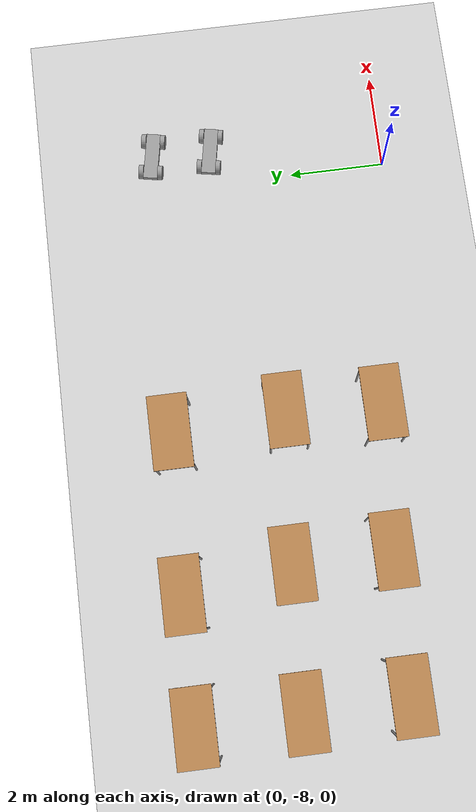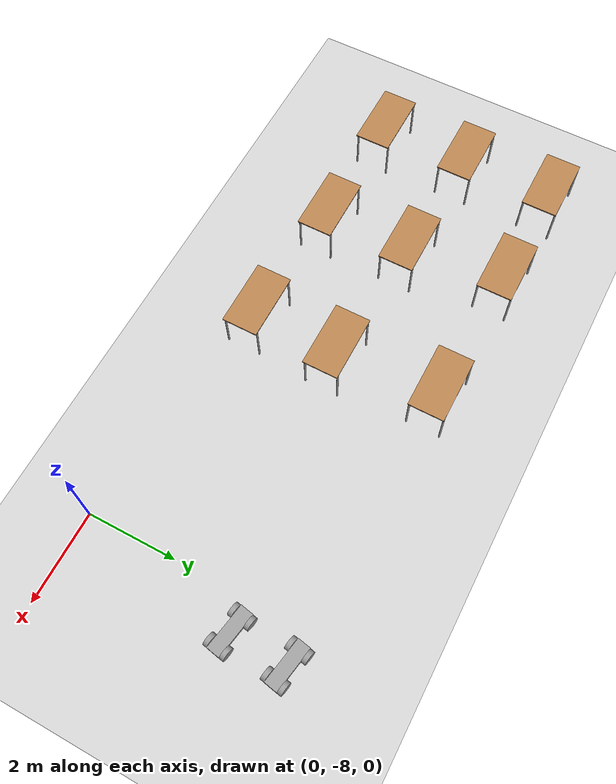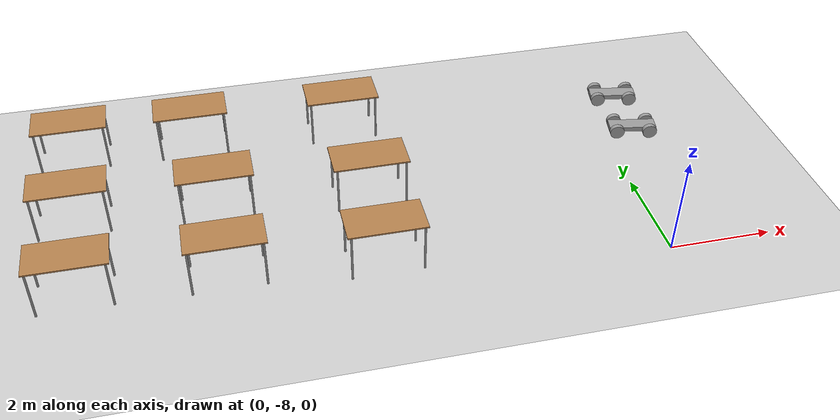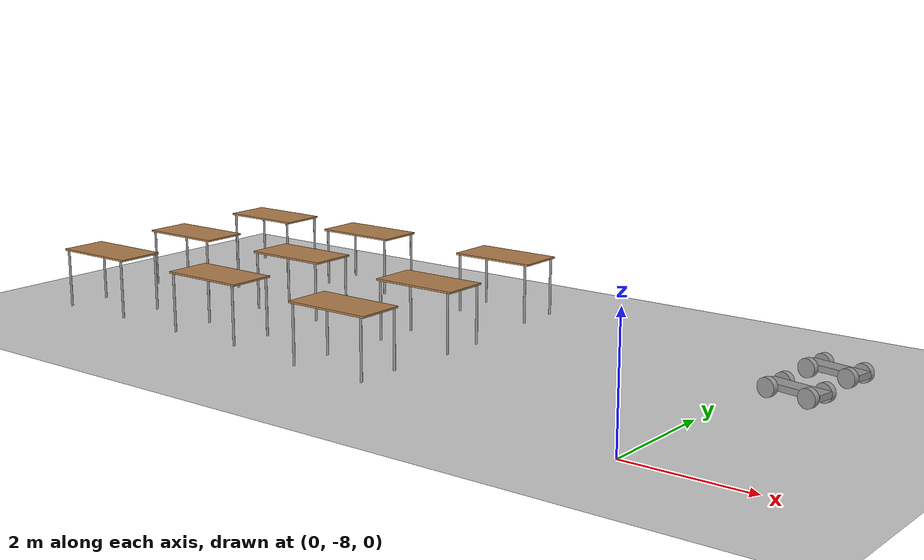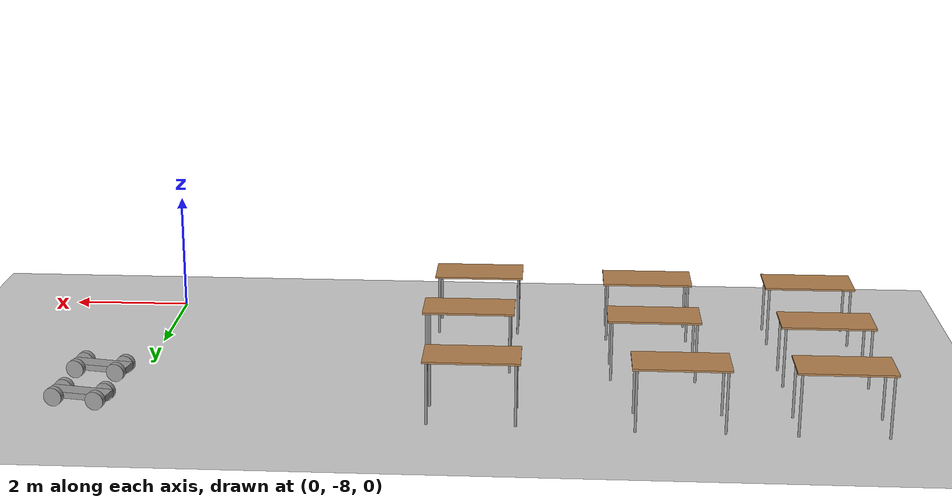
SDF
<sdf version="1.6">
 <world name="default">
  <model name="ground_plane">
   <static>1</static>
   <link name="link">
    <collision name="collision">
     <geometry><plane><normal>0 0 1</normal><size>100 100</size></plane></geometry>
     <surface>
      <contact><collide_bitmask>65535</collide_bitmask></contact>
      <friction><ode><mu>100</mu><mu2>50</mu2></ode></friction>
     </surface>
    </collision>
    <visual name="visual">
     <cast_shadows>0</cast_shadows>
     <geometry><plane><normal>0 0 1</normal><size>100 100</size></plane></geometry>
     <material>
      <script><uri>file://media/materials/scripts/gazebo.material</uri><name>Gazebo/Grey</name></script>
     </material>
    </visual>
   </link>
  </model>
  <model name="table_0">
   <static>1</static>
   <link name="link">
    <collision name="surface">
     <pose>0 0 1 0 -0 0</pose>
     <geometry><box><size>1.5 0.8 0.03</size></box></geometry>
     <surface><friction><ode><mu>0.6</mu><mu2>0.6</mu2></ode></friction></surface>
    </collision>
    <visual name="visual1">
     <pose>0 0 1 0 -0 0</pose>
     <geometry><box><size>1.5 0.8 0.03</size></box></geometry>
     <material>
      <script><uri>file://media/materials/scripts/gazebo.material</uri><name>Gazebo/Wood</name></script>
     </material>
    </visual>
    <collision name="front_left_leg">
     <pose>0.68 0.38 0.5 0 -0 0</pose>
     <geometry><cylinder><radius>0.02</radius><length>1</length></cylinder></geometry>
    </collision>
    <visual name="front_left_leg">
     <pose>0.68 0.38 0.5 0 -0 0</pose>
     <geometry><cylinder><radius>0.02</radius><length>1</length></cylinder></geometry>
     <material>
      <script><uri>file://media/materials/scripts/gazebo.material</uri><name>Gazebo/Grey</name></script>
     </material>
    </visual>
    <collision name="front_right_leg">
     <pose>0.68 -0.38 0.5 0 -0 0</pose>
     <geometry><cylinder><radius>0.02</radius><length>1</length></cylinder></geometry>
    </collision>
    <visual name="front_right_leg">
     <pose>0.68 -0.38 0.5 0 -0 0</pose>
     <geometry><cylinder><radius>0.02</radius><length>1</length></cylinder></geometry>
     <material>
      <script><uri>file://media/materials/scripts/gazebo.material</uri><name>Gazebo/Grey</name></script>
     </material>
    </visual>
    <collision name="back_right_leg">
     <pose>-0.68 -0.38 0.5 0 -0 0</pose>
     <geometry><cylinder><radius>0.02</radius><length>1</length></cylinder></geometry>
    </collision>
    <visual name="back_right_leg">
     <pose>-0.68 -0.38 0.5 0 -0 0</pose>
     <geometry><cylinder><radius>0.02</radius><length>1</length></cylinder></geometry>
     <material>
      <script><uri>file://media/materials/scripts/gazebo.material</uri><name>Gazebo/Grey</name></script>
     </material>
    </visual>
    <collision name="back_left_leg">
     <pose>-0.68 0.38 0.5 0 -0 0</pose>
     <geometry><cylinder><radius>0.02</radius><length>1</length></cylinder></geometry>
    </collision>
    <visual name="back_left_leg">
     <pose>-0.68 0.38 0.5 0 -0 0</pose>
     <geometry><cylinder><radius>0.02</radius><length>1</length></cylinder></geometry>
     <material>
      <script><uri>file://media/materials/scripts/gazebo.material</uri><name>Gazebo/Grey</name></script>
     </material>
    </visual>
   </link>
   <pose>-11.0443 -2.76264 0 0 -0 0</pose>
  </model>
  <model name="table_1">
   <static>1</static>
   <link name="link">
    <collision name="surface">
     <pose>0 0 1 0 -0 0</pose>
     <geometry><box><size>1.5 0.8 0.03</size></box></geometry>
     <surface><friction><ode><mu>0.6</mu><mu2>0.6</mu2></ode></friction></surface>
    </collision>
    <visual name="visual1">
     <pose>0 0 1 0 -0 0</pose>
     <geometry><box><size>1.5 0.8 0.03</size></box></geometry>
     <material>
      <script><uri>file://media/materials/scripts/gazebo.material</uri><name>Gazebo/Wood</name></script>
     </material>
    </visual>
    <collision name="front_left_leg">
     <pose>0.68 0.38 0.5 0 -0 0</pose>
     <geometry><cylinder><radius>0.02</radius><length>1</length></cylinder></geometry>
    </collision>
    <visual name="front_left_leg">
     <pose>0.68 0.38 0.5 0 -0 0</pose>
     <geometry><cylinder><radius>0.02</radius><length>1</length></cylinder></geometry>
     <material>
      <script><uri>file://media/materials/scripts/gazebo.material</uri><name>Gazebo/Grey</name></script>
     </material>
    </visual>
    <collision name="front_right_leg">
     <pose>0.68 -0.38 0.5 0 -0 0</pose>
     <geometry><cylinder><radius>0.02</radius><length>1</length></cylinder></geometry>
    </collision>
    <visual name="front_right_leg">
     <pose>0.68 -0.38 0.5 0 -0 0</pose>
     <geometry><cylinder><radius>0.02</radius><length>1</length></cylinder></geometry>
     <material>
      <script><uri>file://media/materials/scripts/gazebo.material</uri><name>Gazebo/Grey</name></script>
     </material>
    </visual>
    <collision name="back_right_leg">
     <pose>-0.68 -0.38 0.5 0 -0 0</pose>
     <geometry><cylinder><radius>0.02</radius><length>1</length></cylinder></geometry>
    </collision>
    <visual name="back_right_leg">
     <pose>-0.68 -0.38 0.5 0 -0 0</pose>
     <geometry><cylinder><radius>0.02</radius><length>1</length></cylinder></geometry>
     <material>
      <script><uri>file://media/materials/scripts/gazebo.material</uri><name>Gazebo/Grey</name></script>
     </material>
    </visual>
    <collision name="back_left_leg">
     <pose>-0.68 0.38 0.5 0 -0 0</pose>
     <geometry><cylinder><radius>0.02</radius><length>1</length></cylinder></geometry>
    </collision>
    <visual name="back_left_leg">
     <pose>-0.68 0.38 0.5 0 -0 0</pose>
     <geometry><cylinder><radius>0.02</radius><length>1</length></cylinder></geometry>
     <material>
      <script><uri>file://media/materials/scripts/gazebo.material</uri><name>Gazebo/Grey</name></script>
     </material>
    </visual>
   </link>
   <pose>-11.0405 -4.83627 0 0 -0 0</pose>
  </model>
  <model name="table_2">
   <static>1</static>
   <link name="link">
    <collision name="surface">
     <pose>0 0 1 0 -0 0</pose>
     <geometry><box><size>1.5 0.8 0.03</size></box></geometry>
     <surface><friction><ode><mu>0.6</mu><mu2>0.6</mu2></ode></friction></surface>
    </collision>
    <visual name="visual1">
     <pose>0 0 1 0 -0 0</pose>
     <geometry><box><size>1.5 0.8 0.03</size></box></geometry>
     <material>
      <script><uri>file://media/materials/scripts/gazebo.material</uri><name>Gazebo/Wood</name></script>
     </material>
    </visual>
    <collision name="front_left_leg">
     <pose>0.68 0.38 0.5 0 -0 0</pose>
     <geometry><cylinder><radius>0.02</radius><length>1</length></cylinder></geometry>
    </collision>
    <visual name="front_left_leg">
     <pose>0.68 0.38 0.5 0 -0 0</pose>
     <geometry><cylinder><radius>0.02</radius><length>1</length></cylinder></geometry>
     <material>
      <script><uri>file://media/materials/scripts/gazebo.material</uri><name>Gazebo/Grey</name></script>
     </material>
    </visual>
    <collision name="front_right_leg">
     <pose>0.68 -0.38 0.5 0 -0 0</pose>
     <geometry><cylinder><radius>0.02</radius><length>1</length></cylinder></geometry>
    </collision>
    <visual name="front_right_leg">
     <pose>0.68 -0.38 0.5 0 -0 0</pose>
     <geometry><cylinder><radius>0.02</radius><length>1</length></cylinder></geometry>
     <material>
      <script><uri>file://media/materials/scripts/gazebo.material</uri><name>Gazebo/Grey</name></script>
     </material>
    </visual>
    <collision name="back_right_leg">
     <pose>-0.68 -0.38 0.5 0 -0 0</pose>
     <geometry><cylinder><radius>0.02</radius><length>1</length></cylinder></geometry>
    </collision>
    <visual name="back_right_leg">
     <pose>-0.68 -0.38 0.5 0 -0 0</pose>
     <geometry><cylinder><radius>0.02</radius><length>1</length></cylinder></geometry>
     <material>
      <script><uri>file://media/materials/scripts/gazebo.material</uri><name>Gazebo/Grey</name></script>
     </material>
    </visual>
    <collision name="back_left_leg">
     <pose>-0.68 0.38 0.5 0 -0 0</pose>
     <geometry><cylinder><radius>0.02</radius><length>1</length></cylinder></geometry>
    </collision>
    <visual name="back_left_leg">
     <pose>-0.68 0.38 0.5 0 -0 0</pose>
     <geometry><cylinder><radius>0.02</radius><length>1</length></cylinder></geometry>
     <material>
      <script><uri>file://media/materials/scripts/gazebo.material</uri><name>Gazebo/Grey</name></script>
     </material>
    </visual>
   </link>
   <pose>-10.9936 -6.86304 0 0 -0 0</pose>
  </model>
  <model name="table_4">
   <static>1</static>
   <link name="link">
    <collision name="surface">
     <pose>0 0 1 0 -0 0</pose>
     <geometry><box><size>1.5 0.8 0.03</size></box></geometry>
     <surface><friction><ode><mu>0.6</mu><mu2>0.6</mu2></ode></friction></surface>
    </collision>
    <visual name="visual1">
     <pose>0 0 1 0 -0 0</pose>
     <geometry><box><size>1.5 0.8 0.03</size></box></geometry>
     <material>
      <script><uri>file://media/materials/scripts/gazebo.material</uri><name>Gazebo/Wood</name></script>
     </material>
    </visual>
    <collision name="front_left_leg">
     <pose>0.68 0.38 0.5 0 -0 0</pose>
     <geometry><cylinder><radius>0.02</radius><length>1</length></cylinder></geometry>
    </collision>
    <visual name="front_left_leg">
     <pose>0.68 0.38 0.5 0 -0 0</pose>
     <geometry><cylinder><radius>0.02</radius><length>1</length></cylinder></geometry>
     <material>
      <script><uri>file://media/materials/scripts/gazebo.material</uri><name>Gazebo/Grey</name></script>
     </material>
    </visual>
    <collision name="front_right_leg">
     <pose>0.68 -0.38 0.5 0 -0 0</pose>
     <geometry><cylinder><radius>0.02</radius><length>1</length></cylinder></geometry>
    </collision>
    <visual name="front_right_leg">
     <pose>0.68 -0.38 0.5 0 -0 0</pose>
     <geometry><cylinder><radius>0.02</radius><length>1</length></cylinder></geometry>
     <material>
      <script><uri>file://media/materials/scripts/gazebo.material</uri><name>Gazebo/Grey</name></script>
     </material>
    </visual>
    <collision name="back_right_leg">
     <pose>-0.68 -0.38 0.5 0 -0 0</pose>
     <geometry><cylinder><radius>0.02</radius><length>1</length></cylinder></geometry>
    </collision>
    <visual name="back_right_leg">
     <pose>-0.68 -0.38 0.5 0 -0 0</pose>
     <geometry><cylinder><radius>0.02</radius><length>1</length></cylinder></geometry>
     <material>
      <script><uri>file://media/materials/scripts/gazebo.material</uri><name>Gazebo/Grey</name></script>
     </material>
    </visual>
    <collision name="back_left_leg">
     <pose>-0.68 0.38 0.5 0 -0 0</pose>
     <geometry><cylinder><radius>0.02</radius><length>1</length></cylinder></geometry>
    </collision>
    <visual name="back_left_leg">
     <pose>-0.68 0.38 0.5 0 -0 0</pose>
     <geometry><cylinder><radius>0.02</radius><length>1</length></cylinder></geometry>
     <material>
      <script><uri>file://media/materials/scripts/gazebo.material</uri><name>Gazebo/Grey</name></script>
     </material>
    </visual>
   </link>
   <pose>-8.60311 -2.79438 0 0 -0 0</pose>
  </model>
  <model name="table_5">
   <static>1</static>
   <link name="link">
    <collision name="surface">
     <pose>0 0 1 0 -0 0</pose>
     <geometry><box><size>1.5 0.8 0.03</size></box></geometry>
     <surface><friction><ode><mu>0.6</mu><mu2>0.6</mu2></ode></friction></surface>
    </collision>
    <visual name="visual1">
     <pose>0 0 1 0 -0 0</pose>
     <geometry><box><size>1.5 0.8 0.03</size></box></geometry>
     <material>
      <script><uri>file://media/materials/scripts/gazebo.material</uri><name>Gazebo/Wood</name></script>
     </material>
    </visual>
    <collision name="front_left_leg">
     <pose>0.68 0.38 0.5 0 -0 0</pose>
     <geometry><cylinder><radius>0.02</radius><length>1</length></cylinder></geometry>
    </collision>
    <visual name="front_left_leg">
     <pose>0.68 0.38 0.5 0 -0 0</pose>
     <geometry><cylinder><radius>0.02</radius><length>1</length></cylinder></geometry>
     <material>
      <script><uri>file://media/materials/scripts/gazebo.material</uri><name>Gazebo/Grey</name></script>
     </material>
    </visual>
    <collision name="front_right_leg">
     <pose>0.68 -0.38 0.5 0 -0 0</pose>
     <geometry><cylinder><radius>0.02</radius><length>1</length></cylinder></geometry>
    </collision>
    <visual name="front_right_leg">
     <pose>0.68 -0.38 0.5 0 -0 0</pose>
     <geometry><cylinder><radius>0.02</radius><length>1</length></cylinder></geometry>
     <material>
      <script><uri>file://media/materials/scripts/gazebo.material</uri><name>Gazebo/Grey</name></script>
     </material>
    </visual>
    <collision name="back_right_leg">
     <pose>-0.68 -0.38 0.5 0 -0 0</pose>
     <geometry><cylinder><radius>0.02</radius><length>1</length></cylinder></geometry>
    </collision>
    <visual name="back_right_leg">
     <pose>-0.68 -0.38 0.5 0 -0 0</pose>
     <geometry><cylinder><radius>0.02</radius><length>1</length></cylinder></geometry>
     <material>
      <script><uri>file://media/materials/scripts/gazebo.material</uri><name>Gazebo/Grey</name></script>
     </material>
    </visual>
    <collision name="back_left_leg">
     <pose>-0.68 0.38 0.5 0 -0 0</pose>
     <geometry><cylinder><radius>0.02</radius><length>1</length></cylinder></geometry>
    </collision>
    <visual name="back_left_leg">
     <pose>-0.68 0.38 0.5 0 -0 0</pose>
     <geometry><cylinder><radius>0.02</radius><length>1</length></cylinder></geometry>
     <material>
      <script><uri>file://media/materials/scripts/gazebo.material</uri><name>Gazebo/Grey</name></script>
     </material>
    </visual>
   </link>
   <pose>-8.28829 -4.96082 0 0 -0 0</pose>
  </model>
  <model name="table_6">
   <static>1</static>
   <link name="link">
    <collision name="surface">
     <pose>0 0 1 0 -0 0</pose>
     <geometry><box><size>1.5 0.8 0.03</size></box></geometry>
     <surface><friction><ode><mu>0.6</mu><mu2>0.6</mu2></ode></friction></surface>
    </collision>
    <visual name="visual1">
     <pose>0 0 1 0 -0 0</pose>
     <geometry><box><size>1.5 0.8 0.03</size></box></geometry>
     <material>
      <script><uri>file://media/materials/scripts/gazebo.material</uri><name>Gazebo/Wood</name></script>
     </material>
    </visual>
    <collision name="front_left_leg">
     <pose>0.68 0.38 0.5 0 -0 0</pose>
     <geometry><cylinder><radius>0.02</radius><length>1</length></cylinder></geometry>
    </collision>
    <visual name="front_left_leg">
     <pose>0.68 0.38 0.5 0 -0 0</pose>
     <geometry><cylinder><radius>0.02</radius><length>1</length></cylinder></geometry>
     <material>
      <script><uri>file://media/materials/scripts/gazebo.material</uri><name>Gazebo/Grey</name></script>
     </material>
    </visual>
    <collision name="front_right_leg">
     <pose>0.68 -0.38 0.5 0 -0 0</pose>
     <geometry><cylinder><radius>0.02</radius><length>1</length></cylinder></geometry>
    </collision>
    <visual name="front_right_leg">
     <pose>0.68 -0.38 0.5 0 -0 0</pose>
     <geometry><cylinder><radius>0.02</radius><length>1</length></cylinder></geometry>
     <material>
      <script><uri>file://media/materials/scripts/gazebo.material</uri><name>Gazebo/Grey</name></script>
     </material>
    </visual>
    <collision name="back_right_leg">
     <pose>-0.68 -0.38 0.5 0 -0 0</pose>
     <geometry><cylinder><radius>0.02</radius><length>1</length></cylinder></geometry>
    </collision>
    <visual name="back_right_leg">
     <pose>-0.68 -0.38 0.5 0 -0 0</pose>
     <geometry><cylinder><radius>0.02</radius><length>1</length></cylinder></geometry>
     <material>
      <script><uri>file://media/materials/scripts/gazebo.material</uri><name>Gazebo/Grey</name></script>
     </material>
    </visual>
    <collision name="back_left_leg">
     <pose>-0.68 0.38 0.5 0 -0 0</pose>
     <geometry><cylinder><radius>0.02</radius><length>1</length></cylinder></geometry>
    </collision>
    <visual name="back_left_leg">
     <pose>-0.68 0.38 0.5 0 -0 0</pose>
     <geometry><cylinder><radius>0.02</radius><length>1</length></cylinder></geometry>
     <material>
      <script><uri>file://media/materials/scripts/gazebo.material</uri><name>Gazebo/Grey</name></script>
     </material>
    </visual>
   </link>
   <pose>-8.26111 -6.92444 0 0 -0 0</pose>
  </model>
  <model name="table_8">
   <static>1</static>
   <link name="link">
    <collision name="surface">
     <pose>0 0 1 0 -0 0</pose>
     <geometry><box><size>1.5 0.8 0.03</size></box></geometry>
     <surface><friction><ode><mu>0.6</mu><mu2>0.6</mu2></ode></friction></surface>
    </collision>
    <visual name="visual1">
     <pose>0 0 1 0 -0 0</pose>
     <geometry><box><size>1.5 0.8 0.03</size></box></geometry>
     <material>
      <script><uri>file://media/materials/scripts/gazebo.material</uri><name>Gazebo/Wood</name></script>
     </material>
    </visual>
    <collision name="front_left_leg">
     <pose>0.68 0.38 0.5 0 -0 0</pose>
     <geometry><cylinder><radius>0.02</radius><length>1</length></cylinder></geometry>
    </collision>
    <visual name="front_left_leg">
     <pose>0.68 0.38 0.5 0 -0 0</pose>
     <geometry><cylinder><radius>0.02</radius><length>1</length></cylinder></geometry>
     <material>
      <script><uri>file://media/materials/scripts/gazebo.material</uri><name>Gazebo/Grey</name></script>
     </material>
    </visual>
    <collision name="front_right_leg">
     <pose>0.68 -0.38 0.5 0 -0 0</pose>
     <geometry><cylinder><radius>0.02</radius><length>1</length></cylinder></geometry>
    </collision>
    <visual name="front_right_leg">
     <pose>0.68 -0.38 0.5 0 -0 0</pose>
     <geometry><cylinder><radius>0.02</radius><length>1</length></cylinder></geometry>
     <material>
      <script><uri>file://media/materials/scripts/gazebo.material</uri><name>Gazebo/Grey</name></script>
     </material>
    </visual>
    <collision name="back_right_leg">
     <pose>-0.68 -0.38 0.5 0 -0 0</pose>
     <geometry><cylinder><radius>0.02</radius><length>1</length></cylinder></geometry>
    </collision>
    <visual name="back_right_leg">
     <pose>-0.68 -0.38 0.5 0 -0 0</pose>
     <geometry><cylinder><radius>0.02</radius><length>1</length></cylinder></geometry>
     <material>
      <script><uri>file://media/materials/scripts/gazebo.material</uri><name>Gazebo/Grey</name></script>
     </material>
    </visual>
    <collision name="back_left_leg">
     <pose>-0.68 0.38 0.5 0 -0 0</pose>
     <geometry><cylinder><radius>0.02</radius><length>1</length></cylinder></geometry>
    </collision>
    <visual name="back_left_leg">
     <pose>-0.68 0.38 0.5 0 -0 0</pose>
     <geometry><cylinder><radius>0.02</radius><length>1</length></cylinder></geometry>
     <material>
      <script><uri>file://media/materials/scripts/gazebo.material</uri><name>Gazebo/Grey</name></script>
     </material>
    </visual>
   </link>
   <pose>-5.43799 -2.9013 0 0 -0 0</pose>
  </model>
  <model name="table_9">
   <static>1</static>
   <link name="link">
    <collision name="surface">
     <pose>0 0 1 0 -0 0</pose>
     <geometry><box><size>1.5 0.8 0.03</size></box></geometry>
     <surface><friction><ode><mu>0.6</mu><mu2>0.6</mu2></ode></friction></surface>
    </collision>
    <visual name="visual1">
     <pose>0 0 1 0 -0 0</pose>
     <geometry><box><size>1.5 0.8 0.03</size></box></geometry>
     <material>
      <script><uri>file://media/materials/scripts/gazebo.material</uri><name>Gazebo/Wood</name></script>
     </material>
    </visual>
    <collision name="front_left_leg">
     <pose>0.68 0.38 0.5 0 -0 0</pose>
     <geometry><cylinder><radius>0.02</radius><length>1</length></cylinder></geometry>
    </collision>
    <visual name="front_left_leg">
     <pose>0.68 0.38 0.5 0 -0 0</pose>
     <geometry><cylinder><radius>0.02</radius><length>1</length></cylinder></geometry>
     <material>
      <script><uri>file://media/materials/scripts/gazebo.material</uri><name>Gazebo/Grey</name></script>
     </material>
    </visual>
    <collision name="front_right_leg">
     <pose>0.68 -0.38 0.5 0 -0 0</pose>
     <geometry><cylinder><radius>0.02</radius><length>1</length></cylinder></geometry>
    </collision>
    <visual name="front_right_leg">
     <pose>0.68 -0.38 0.5 0 -0 0</pose>
     <geometry><cylinder><radius>0.02</radius><length>1</length></cylinder></geometry>
     <material>
      <script><uri>file://media/materials/scripts/gazebo.material</uri><name>Gazebo/Grey</name></script>
     </material>
    </visual>
    <collision name="back_right_leg">
     <pose>-0.68 -0.38 0.5 0 -0 0</pose>
     <geometry><cylinder><radius>0.02</radius><length>1</length></cylinder></geometry>
    </collision>
    <visual name="back_right_leg">
     <pose>-0.68 -0.38 0.5 0 -0 0</pose>
     <geometry><cylinder><radius>0.02</radius><length>1</length></cylinder></geometry>
     <material>
      <script><uri>file://media/materials/scripts/gazebo.material</uri><name>Gazebo/Grey</name></script>
     </material>
    </visual>
    <collision name="back_left_leg">
     <pose>-0.68 0.38 0.5 0 -0 0</pose>
     <geometry><cylinder><radius>0.02</radius><length>1</length></cylinder></geometry>
    </collision>
    <visual name="back_left_leg">
     <pose>-0.68 0.38 0.5 0 -0 0</pose>
     <geometry><cylinder><radius>0.02</radius><length>1</length></cylinder></geometry>
     <material>
      <script><uri>file://media/materials/scripts/gazebo.material</uri><name>Gazebo/Grey</name></script>
     </material>
    </visual>
   </link>
   <pose>-5.28318 -5.20551 0 0 -0 0</pose>
  </model>
  <model name="table_10">
   <static>1</static>
   <link name="link">
    <collision name="surface">
     <pose>0 0 1 0 -0 0</pose>
     <geometry><box><size>1.5 0.8 0.03</size></box></geometry>
     <surface><friction><ode><mu>0.6</mu><mu2>0.6</mu2></ode></friction></surface>
    </collision>
    <visual name="visual1">
     <pose>0 0 1 0 -0 0</pose>
     <geometry><box><size>1.5 0.8 0.03</size></box></geometry>
     <material>
      <script><uri>file://media/materials/scripts/gazebo.material</uri><name>Gazebo/Wood</name></script>
     </material>
    </visual>
    <collision name="front_left_leg">
     <pose>0.68 0.38 0.5 0 -0 0</pose>
     <geometry><cylinder><radius>0.02</radius><length>1</length></cylinder></geometry>
    </collision>
    <visual name="front_left_leg">
     <pose>0.68 0.38 0.5 0 -0 0</pose>
     <geometry><cylinder><radius>0.02</radius><length>1</length></cylinder></geometry>
     <material>
      <script><uri>file://media/materials/scripts/gazebo.material</uri><name>Gazebo/Grey</name></script>
     </material>
    </visual>
    <collision name="front_right_leg">
     <pose>0.68 -0.38 0.5 0 -0 0</pose>
     <geometry><cylinder><radius>0.02</radius><length>1</length></cylinder></geometry>
    </collision>
    <visual name="front_right_leg">
     <pose>0.68 -0.38 0.5 0 -0 0</pose>
     <geometry><cylinder><radius>0.02</radius><length>1</length></cylinder></geometry>
     <material>
      <script><uri>file://media/materials/scripts/gazebo.material</uri><name>Gazebo/Grey</name></script>
     </material>
    </visual>
    <collision name="back_right_leg">
     <pose>-0.68 -0.38 0.5 0 -0 0</pose>
     <geometry><cylinder><radius>0.02</radius><length>1</length></cylinder></geometry>
    </collision>
    <visual name="back_right_leg">
     <pose>-0.68 -0.38 0.5 0 -0 0</pose>
     <geometry><cylinder><radius>0.02</radius><length>1</length></cylinder></geometry>
     <material>
      <script><uri>file://media/materials/scripts/gazebo.material</uri><name>Gazebo/Grey</name></script>
     </material>
    </visual>
    <collision name="back_left_leg">
     <pose>-0.68 0.38 0.5 0 -0 0</pose>
     <geometry><cylinder><radius>0.02</radius><length>1</length></cylinder></geometry>
    </collision>
    <visual name="back_left_leg">
     <pose>-0.68 0.38 0.5 0 -0 0</pose>
     <geometry><cylinder><radius>0.02</radius><length>1</length></cylinder></geometry>
     <material>
      <script><uri>file://media/materials/scripts/gazebo.material</uri><name>Gazebo/Grey</name></script>
     </material>
    </visual>
   </link>
   <pose>-5.37537 -7.1441 0 0 -0 0</pose>
  </model>
  <model name="rover_0">
   <link name="link_0">
    <inertial>
     <mass>1</mass>
     <inertia>
      <ixx>0.166667</ixx>
      <ixy>0</ixy>
      <ixz>0</ixz>
      <iyy>0.166667</iyy>
      <iyz>0</iyz>
      <izz>0.166667</izz>
     </inertia>
    </inertial>
    <pose>0.490216 -0.820005 0.106749 0 -0 0</pose>
    <visual name="visual">
     <geometry><box><size>1 0.3 0.1</size></box></geometry>
     <material>
      <lighting>1</lighting>
      <script><uri>file://media/materials/scripts/gazebo.material</uri><name>Gazebo/Grey</name></script>
      <shader type="vertex"><normal_map>__default__</normal_map></shader>
      <ambient>0.3 0.3 0.3 1</ambient>
      <diffuse>0.7 0.7 0.7 1</diffuse>
      <specular>0.01 0.01 0.01 1</specular>
      <emissive>0 0 0 1</emissive>
     </material>
    </visual>
    <collision name="collision">
     <geometry><box><size>1 0.3 0.1</size></box></geometry>
     <surface>
      <friction>
       <ode><mu>1</mu><mu2>1</mu2><fdir1>0 0 0</fdir1><slip1>0</slip1><slip2>0</slip2></ode>
       <torsional>
        <coefficient>1</coefficient>
        <patch_radius>0</patch_radius>
        <surface_radius>0</surface_radius>
        <use_patch_radius>1</use_patch_radius>
        <ode><slip>0</slip></ode>
       </torsional>
      </friction>
      <bounce><restitution_coefficient>0</restitution_coefficient><threshold>1e+06</threshold></bounce>
      <contact>
       <collide_without_contact>0</collide_without_contact>
       <collide_without_contact_bitmask>1</collide_without_contact_bitmask>
       <collide_bitmask>1</collide_bitmask>
       <ode>
        <soft_cfm>0</soft_cfm>
        <soft_erp>0.2</soft_erp>
        <kp>1e+13</kp>
        <kd>1</kd>
        <max_vel>0.01</max_vel>
        <min_depth>0</min_depth>
       </ode>
       <bullet>
        <split_impulse>1</split_impulse>
        <split_impulse_penetration_threshold>-0.01</split_impulse_penetration_threshold>
        <soft_cfm>0</soft_cfm>
        <soft_erp>0.2</soft_erp>
        <kp>1e+13</kp>
        <kd>1</kd>
       </bullet>
      </contact>
     </surface>
    </collision>
   </link>
   <link name="link_1">
    <inertial>
     <mass>1</mass>
     <inertia><ixx>0.145833</ixx><ixy>0</ixy><ixz>0</ixz><iyy>0.145833</iyy><iyz>0</iyz><izz>0.125</izz></inertia>
    </inertial>
    <pose>0.140216 -1.02012 0.096637 1.57 -0 0</pose>
    <visual name="visual">
     <geometry><cylinder><radius>0.15</radius><length>0.1</length></cylinder></geometry>
     <material>
      <lighting>1</lighting>
      <script><uri>file://media/materials/scripts/gazebo.material</uri><name>Gazebo/Grey</name></script>
      <shader type="vertex"><normal_map>__default__</normal_map></shader>
      <ambient>0.3 0.3 0.3 1</ambient>
      <diffuse>0.7 0.7 0.7 1</diffuse>
      <specular>0.01 0.01 0.01 1</specular>
      <emissive>0 0 0 1</emissive>
     </material>
    </visual>
    <collision name="collision">
     <geometry><cylinder><radius>0.15</radius><length>0.1</length></cylinder></geometry>
     <surface>
      <friction>
       <ode><mu>1</mu><mu2>1</mu2><fdir1>0 0 0</fdir1><slip1>0</slip1><slip2>0</slip2></ode>
       <torsional>
        <coefficient>1</coefficient>
        <patch_radius>0</patch_radius>
        <surface_radius>0</surface_radius>
        <use_patch_radius>1</use_patch_radius>
        <ode><slip>0</slip></ode>
       </torsional>
      </friction>
      <bounce><restitution_coefficient>0</restitution_coefficient><threshold>1e+06</threshold></bounce>
      <contact>
       <collide_without_contact>0</collide_without_contact>
       <collide_without_contact_bitmask>1</collide_without_contact_bitmask>
       <collide_bitmask>1</collide_bitmask>
       <ode>
        <soft_cfm>0</soft_cfm>
        <soft_erp>0.2</soft_erp>
        <kp>1e+13</kp>
        <kd>1</kd>
        <max_vel>0.01</max_vel>
        <min_depth>0</min_depth>
       </ode>
       <bullet>
        <split_impulse>1</split_impulse>
        <split_impulse_penetration_threshold>-0.01</split_impulse_penetration_threshold>
        <soft_cfm>0</soft_cfm>
        <soft_erp>0.2</soft_erp>
        <kp>1e+13</kp>
        <kd>1</kd>
       </bullet>
      </contact>
     </surface>
    </collision>
   </link>
   <link name="link_2">
    <inertial>
     <mass>1</mass>
     <inertia><ixx>0.145833</ixx><ixy>0</ixy><ixz>0</ixz><iyy>0.145833</iyy><iyz>0</iyz><izz>0.125</izz></inertia>
    </inertial>
    <pose>0.840216 -1.02012 0.096637 1.57 -0 0</pose>
    <visual name="visual">
     <geometry><cylinder><radius>0.15</radius><length>0.1</length></cylinder></geometry>
     <material>
      <lighting>1</lighting>
      <script><uri>file://media/materials/scripts/gazebo.material</uri><name>Gazebo/Grey</name></script>
      <shader type="vertex"><normal_map>__default__</normal_map></shader>
      <ambient>0.3 0.3 0.3 1</ambient>
      <diffuse>0.7 0.7 0.7 1</diffuse>
      <specular>0.01 0.01 0.01 1</specular>
      <emissive>0 0 0 1</emissive>
     </material>
    </visual>
    <collision name="collision">
     <geometry><cylinder><radius>0.15</radius><length>0.1</length></cylinder></geometry>
     <surface>
      <friction>
       <ode><mu>1</mu><mu2>1</mu2><fdir1>0 0 0</fdir1><slip1>0</slip1><slip2>0</slip2></ode>
       <torsional>
        <coefficient>1</coefficient>
        <patch_radius>0</patch_radius>
        <surface_radius>0</surface_radius>
        <use_patch_radius>1</use_patch_radius>
        <ode><slip>0</slip></ode>
       </torsional>
      </friction>
      <bounce><restitution_coefficient>0</restitution_coefficient><threshold>1e+06</threshold></bounce>
      <contact>
       <collide_without_contact>0</collide_without_contact>
       <collide_without_contact_bitmask>1</collide_without_contact_bitmask>
       <collide_bitmask>1</collide_bitmask>
       <ode>
        <soft_cfm>0</soft_cfm>
        <soft_erp>0.2</soft_erp>
        <kp>1e+13</kp>
        <kd>1</kd>
        <max_vel>0.01</max_vel>
        <min_depth>0</min_depth>
       </ode>
       <bullet>
        <split_impulse>1</split_impulse>
        <split_impulse_penetration_threshold>-0.01</split_impulse_penetration_threshold>
        <soft_cfm>0</soft_cfm>
        <soft_erp>0.2</soft_erp>
        <kp>1e+13</kp>
        <kd>1</kd>
       </bullet>
      </contact>
     </surface>
    </collision>
   </link>
   <link name="link_4">
    <inertial>
     <mass>1</mass>
     <inertia><ixx>0.145833</ixx><ixy>0</ixy><ixz>0</ixz><iyy>0.145833</iyy><iyz>0</iyz><izz>0.125</izz></inertia>
    </inertial>
    <pose>0.840216 -0.619885 0.096637 -1.57 0 0</pose>
    <visual name="visual">
     <geometry><cylinder><radius>0.15</radius><length>0.1</length></cylinder></geometry>
     <material>
      <lighting>1</lighting>
      <script><uri>file://media/materials/scripts/gazebo.material</uri><name>Gazebo/Grey</name></script>
      <shader type="vertex"><normal_map>__default__</normal_map></shader>
      <ambient>0.3 0.3 0.3 1</ambient>
      <diffuse>0.7 0.7 0.7 1</diffuse>
      <specular>0.01 0.01 0.01 1</specular>
      <emissive>0 0 0 1</emissive>
     </material>
    </visual>
    <collision name="collision">
     <geometry><cylinder><radius>0.15</radius><length>0.1</length></cylinder></geometry>
     <surface>
      <friction>
       <ode><mu>1</mu><mu2>1</mu2><fdir1>0 0 0</fdir1><slip1>0</slip1><slip2>0</slip2></ode>
       <torsional>
        <coefficient>1</coefficient>
        <patch_radius>0</patch_radius>
        <surface_radius>0</surface_radius>
        <use_patch_radius>1</use_patch_radius>
        <ode><slip>0</slip></ode>
       </torsional>
      </friction>
      <bounce><restitution_coefficient>0</restitution_coefficient><threshold>1e+06</threshold></bounce>
      <contact>
       <collide_without_contact>0</collide_without_contact>
       <collide_without_contact_bitmask>1</collide_without_contact_bitmask>
       <collide_bitmask>1</collide_bitmask>
       <ode>
        <soft_cfm>0</soft_cfm>
        <soft_erp>0.2</soft_erp>
        <kp>1e+13</kp>
        <kd>1</kd>
        <max_vel>0.01</max_vel>
        <min_depth>0</min_depth>
       </ode>
       <bullet>
        <split_impulse>1</split_impulse>
        <split_impulse_penetration_threshold>-0.01</split_impulse_penetration_threshold>
        <soft_cfm>0</soft_cfm>
        <soft_erp>0.2</soft_erp>
        <kp>1e+13</kp>
        <kd>1</kd>
       </bullet>
      </contact>
     </surface>
    </collision>
   </link>
   <link name="link_4_clone">
    <inertial>
     <mass>1</mass>
     <inertia><ixx>0.145833</ixx><ixy>0</ixy><ixz>0</ixz><iyy>0.145833</iyy><iyz>0</iyz><izz>0.125</izz></inertia>
    </inertial>
    <pose>0.140216 -0.619885 0.096709 -1.57 0 0</pose>
    <visual name="visual">
     <geometry><cylinder><radius>0.15</radius><length>0.1</length></cylinder></geometry>
     <material>
      <lighting>1</lighting>
      <script><uri>file://media/materials/scripts/gazebo.material</uri><name>Gazebo/Grey</name></script>
      <shader type="vertex"><normal_map>__default__</normal_map></shader>
      <ambient>0.3 0.3 0.3 1</ambient>
      <diffuse>0.7 0.7 0.7 1</diffuse>
      <specular>0.01 0.01 0.01 1</specular>
      <emissive>0 0 0 1</emissive>
     </material>
    </visual>
    <collision name="collision">
     <geometry><cylinder><radius>0.15</radius><length>0.1</length></cylinder></geometry>
     <surface>
      <friction>
       <ode><mu>1</mu><mu2>1</mu2><fdir1>0 0 0</fdir1><slip1>0</slip1><slip2>0</slip2></ode>
       <torsional>
        <coefficient>1</coefficient>
        <patch_radius>0</patch_radius>
        <surface_radius>0</surface_radius>
        <use_patch_radius>1</use_patch_radius>
        <ode><slip>0</slip></ode>
       </torsional>
      </friction>
      <bounce><restitution_coefficient>0</restitution_coefficient><threshold>1e+06</threshold></bounce>
      <contact>
       <collide_without_contact>0</collide_without_contact>
       <collide_without_contact_bitmask>1</collide_without_contact_bitmask>
       <collide_bitmask>1</collide_bitmask>
       <ode>
        <soft_cfm>0</soft_cfm>
        <soft_erp>0.2</soft_erp>
        <kp>1e+13</kp>
        <kd>1</kd>
        <max_vel>0.01</max_vel>
        <min_depth>0</min_depth>
       </ode>
       <bullet>
        <split_impulse>1</split_impulse>
        <split_impulse_penetration_threshold>-0.01</split_impulse_penetration_threshold>
        <soft_cfm>0</soft_cfm>
        <soft_erp>0.2</soft_erp>
        <kp>1e+13</kp>
        <kd>1</kd>
       </bullet>
      </contact>
     </surface>
    </collision>
   </link>
   <joint name="link_0_JOINT_10" type="revolute">
    <parent>link_0</parent>
    <child>link_1</child>
    <axis>
     <xyz>0 0 1</xyz>
     <use_parent_model_frame>0</use_parent_model_frame>
     <limit>
      <lower>-1.79769e+308</lower>
      <upper>1.79769e+308</upper>
      <effort>-1</effort>
      <velocity>-1</velocity>
     </limit>
     <dynamics>
      <spring_reference>0</spring_reference>
      <spring_stiffness>0</spring_stiffness>
      <damping>0</damping>
     </dynamics>
    </axis>
    <physics>
     <ode><limit><cfm>0</cfm><erp>0.2</erp></limit><suspension><cfm>0</cfm><erp>0.2</erp></suspension></ode>
    </physics>
   </joint>
   <joint name="link_0_JOINT_11" type="revolute">
    <parent>link_0</parent>
    <child>link_2</child>
    <axis>
     <xyz>0 0 1</xyz>
     <use_parent_model_frame>0</use_parent_model_frame>
     <limit>
      <lower>-1.79769e+308</lower>
      <upper>1.79769e+308</upper>
      <effort>-1</effort>
      <velocity>-1</velocity>
     </limit>
     <dynamics>
      <spring_reference>0</spring_reference>
      <spring_stiffness>0</spring_stiffness>
      <damping>0</damping>
     </dynamics>
    </axis>
    <physics>
     <ode><limit><cfm>0</cfm><erp>0.2</erp></limit><suspension><cfm>0</cfm><erp>0.2</erp></suspension></ode>
    </physics>
   </joint>
   <joint name="link_0_JOINT_13" type="revolute">
    <parent>link_0</parent>
    <child>link_4</child>
    <axis>
     <xyz>0 0 1</xyz>
     <use_parent_model_frame>0</use_parent_model_frame>
     <limit>
      <lower>-1.79769e+308</lower>
      <upper>1.79769e+308</upper>
      <effort>-1</effort>
      <velocity>-1</velocity>
     </limit>
     <dynamics>
      <spring_reference>0</spring_reference>
      <spring_stiffness>0</spring_stiffness>
      <damping>0</damping>
     </dynamics>
    </axis>
    <physics>
     <ode><limit><cfm>0</cfm><erp>0.2</erp></limit><suspension><cfm>0</cfm><erp>0.2</erp></suspension></ode>
    </physics>
   </joint>
   <joint name="link_0_JOINT_14" type="revolute">
    <parent>link_0</parent>
    <child>link_4_clone</child>
    <axis>
     <xyz>0 0 1</xyz>
     <use_parent_model_frame>0</use_parent_model_frame>
     <limit>
      <lower>-1.79769e+308</lower>
      <upper>1.79769e+308</upper>
      <effort>-1</effort>
      <velocity>-1</velocity>
     </limit>
     <dynamics>
      <spring_reference>0</spring_reference>
      <spring_stiffness>0</spring_stiffness>
      <damping>0</damping>
     </dynamics>
    </axis>
    <physics>
     <ode><limit><cfm>0</cfm><erp>0.2</erp></limit><suspension><cfm>0</cfm><erp>0.2</erp></suspension></ode>
    </physics>
   </joint>
   <static>0</static>
   <pose>0.392592 -2.18843 0.05337 -3.2e-05 -1.4e-05 -0.182337</pose>
  </model>
  <model name="rover_1">
   <link name="link_0">
    <inertial>
     <mass>1</mass>
     <inertia>
      <ixx>0.166667</ixx>
      <ixy>0</ixy>
      <ixz>0</ixz>
      <iyy>0.166667</iyy>
      <iyz>0</iyz>
      <izz>0.166667</izz>
     </inertia>
    </inertial>
    <pose>0.490216 -0.820005 0.106749 0 -0 0</pose>
    <visual name="visual">
     <geometry><box><size>1 0.3 0.1</size></box></geometry>
     <material>
      <lighting>1</lighting>
      <script><uri>file://media/materials/scripts/gazebo.material</uri><name>Gazebo/Grey</name></script>
      <shader type="vertex"><normal_map>__default__</normal_map></shader>
      <ambient>0.3 0.3 0.3 1</ambient>
      <diffuse>0.7 0.7 0.7 1</diffuse>
      <specular>0.01 0.01 0.01 1</specular>
      <emissive>0 0 0 1</emissive>
     </material>
    </visual>
    <collision name="collision">
     <geometry><box><size>1 0.3 0.1</size></box></geometry>
     <surface>
      <friction>
       <ode><mu>1</mu><mu2>1</mu2><fdir1>0 0 0</fdir1><slip1>0</slip1><slip2>0</slip2></ode>
       <torsional>
        <coefficient>1</coefficient>
        <patch_radius>0</patch_radius>
        <surface_radius>0</surface_radius>
        <use_patch_radius>1</use_patch_radius>
        <ode><slip>0</slip></ode>
       </torsional>
      </friction>
      <bounce><restitution_coefficient>0</restitution_coefficient><threshold>1e+06</threshold></bounce>
      <contact>
       <collide_without_contact>0</collide_without_contact>
       <collide_without_contact_bitmask>1</collide_without_contact_bitmask>
       <collide_bitmask>1</collide_bitmask>
       <ode>
        <soft_cfm>0</soft_cfm>
        <soft_erp>0.2</soft_erp>
        <kp>1e+13</kp>
        <kd>1</kd>
        <max_vel>0.01</max_vel>
        <min_depth>0</min_depth>
       </ode>
       <bullet>
        <split_impulse>1</split_impulse>
        <split_impulse_penetration_threshold>-0.01</split_impulse_penetration_threshold>
        <soft_cfm>0</soft_cfm>
        <soft_erp>0.2</soft_erp>
        <kp>1e+13</kp>
        <kd>1</kd>
       </bullet>
      </contact>
     </surface>
    </collision>
   </link>
   <link name="link_1">
    <inertial>
     <mass>1</mass>
     <inertia><ixx>0.145833</ixx><ixy>0</ixy><ixz>0</ixz><iyy>0.145833</iyy><iyz>0</iyz><izz>0.125</izz></inertia>
    </inertial>
    <pose>0.140216 -1.02012 0.096637 1.57 -0 0</pose>
    <visual name="visual">
     <geometry><cylinder><radius>0.15</radius><length>0.1</length></cylinder></geometry>
     <material>
      <lighting>1</lighting>
      <script><uri>file://media/materials/scripts/gazebo.material</uri><name>Gazebo/Grey</name></script>
      <shader type="vertex"><normal_map>__default__</normal_map></shader>
      <ambient>0.3 0.3 0.3 1</ambient>
      <diffuse>0.7 0.7 0.7 1</diffuse>
      <specular>0.01 0.01 0.01 1</specular>
      <emissive>0 0 0 1</emissive>
     </material>
    </visual>
    <collision name="collision">
     <geometry><cylinder><radius>0.15</radius><length>0.1</length></cylinder></geometry>
     <surface>
      <friction>
       <ode><mu>1</mu><mu2>1</mu2><fdir1>0 0 0</fdir1><slip1>0</slip1><slip2>0</slip2></ode>
       <torsional>
        <coefficient>1</coefficient>
        <patch_radius>0</patch_radius>
        <surface_radius>0</surface_radius>
        <use_patch_radius>1</use_patch_radius>
        <ode><slip>0</slip></ode>
       </torsional>
      </friction>
      <bounce><restitution_coefficient>0</restitution_coefficient><threshold>1e+06</threshold></bounce>
      <contact>
       <collide_without_contact>0</collide_without_contact>
       <collide_without_contact_bitmask>1</collide_without_contact_bitmask>
       <collide_bitmask>1</collide_bitmask>
       <ode>
        <soft_cfm>0</soft_cfm>
        <soft_erp>0.2</soft_erp>
        <kp>1e+13</kp>
        <kd>1</kd>
        <max_vel>0.01</max_vel>
        <min_depth>0</min_depth>
       </ode>
       <bullet>
        <split_impulse>1</split_impulse>
        <split_impulse_penetration_threshold>-0.01</split_impulse_penetration_threshold>
        <soft_cfm>0</soft_cfm>
        <soft_erp>0.2</soft_erp>
        <kp>1e+13</kp>
        <kd>1</kd>
       </bullet>
      </contact>
     </surface>
    </collision>
   </link>
   <link name="link_2">
    <inertial>
     <mass>1</mass>
     <inertia><ixx>0.145833</ixx><ixy>0</ixy><ixz>0</ixz><iyy>0.145833</iyy><iyz>0</iyz><izz>0.125</izz></inertia>
    </inertial>
    <pose>0.840216 -1.02012 0.096637 1.57 -0 0</pose>
    <visual name="visual">
     <geometry><cylinder><radius>0.15</radius><length>0.1</length></cylinder></geometry>
     <material>
      <lighting>1</lighting>
      <script><uri>file://media/materials/scripts/gazebo.material</uri><name>Gazebo/Grey</name></script>
      <shader type="vertex"><normal_map>__default__</normal_map></shader>
      <ambient>0.3 0.3 0.3 1</ambient>
      <diffuse>0.7 0.7 0.7 1</diffuse>
      <specular>0.01 0.01 0.01 1</specular>
      <emissive>0 0 0 1</emissive>
     </material>
    </visual>
    <collision name="collision">
     <geometry><cylinder><radius>0.15</radius><length>0.1</length></cylinder></geometry>
     <surface>
      <friction>
       <ode><mu>1</mu><mu2>1</mu2><fdir1>0 0 0</fdir1><slip1>0</slip1><slip2>0</slip2></ode>
       <torsional>
        <coefficient>1</coefficient>
        <patch_radius>0</patch_radius>
        <surface_radius>0</surface_radius>
        <use_patch_radius>1</use_patch_radius>
        <ode><slip>0</slip></ode>
       </torsional>
      </friction>
      <bounce><restitution_coefficient>0</restitution_coefficient><threshold>1e+06</threshold></bounce>
      <contact>
       <collide_without_contact>0</collide_without_contact>
       <collide_without_contact_bitmask>1</collide_without_contact_bitmask>
       <collide_bitmask>1</collide_bitmask>
       <ode>
        <soft_cfm>0</soft_cfm>
        <soft_erp>0.2</soft_erp>
        <kp>1e+13</kp>
        <kd>1</kd>
        <max_vel>0.01</max_vel>
        <min_depth>0</min_depth>
       </ode>
       <bullet>
        <split_impulse>1</split_impulse>
        <split_impulse_penetration_threshold>-0.01</split_impulse_penetration_threshold>
        <soft_cfm>0</soft_cfm>
        <soft_erp>0.2</soft_erp>
        <kp>1e+13</kp>
        <kd>1</kd>
       </bullet>
      </contact>
     </surface>
    </collision>
   </link>
   <link name="link_4">
    <inertial>
     <mass>1</mass>
     <inertia><ixx>0.145833</ixx><ixy>0</ixy><ixz>0</ixz><iyy>0.145833</iyy><iyz>0</iyz><izz>0.125</izz></inertia>
    </inertial>
    <pose>0.840216 -0.619885 0.096637 -1.57 0 0</pose>
    <visual name="visual">
     <geometry><cylinder><radius>0.15</radius><length>0.1</length></cylinder></geometry>
     <material>
      <lighting>1</lighting>
      <script><uri>file://media/materials/scripts/gazebo.material</uri><name>Gazebo/Grey</name></script>
      <shader type="vertex"><normal_map>__default__</normal_map></shader>
      <ambient>0.3 0.3 0.3 1</ambient>
      <diffuse>0.7 0.7 0.7 1</diffuse>
      <specular>0.01 0.01 0.01 1</specular>
      <emissive>0 0 0 1</emissive>
     </material>
    </visual>
    <collision name="collision">
     <geometry><cylinder><radius>0.15</radius><length>0.1</length></cylinder></geometry>
     <surface>
      <friction>
       <ode><mu>1</mu><mu2>1</mu2><fdir1>0 0 0</fdir1><slip1>0</slip1><slip2>0</slip2></ode>
       <torsional>
        <coefficient>1</coefficient>
        <patch_radius>0</patch_radius>
        <surface_radius>0</surface_radius>
        <use_patch_radius>1</use_patch_radius>
        <ode><slip>0</slip></ode>
       </torsional>
      </friction>
      <bounce><restitution_coefficient>0</restitution_coefficient><threshold>1e+06</threshold></bounce>
      <contact>
       <collide_without_contact>0</collide_without_contact>
       <collide_without_contact_bitmask>1</collide_without_contact_bitmask>
       <collide_bitmask>1</collide_bitmask>
       <ode>
        <soft_cfm>0</soft_cfm>
        <soft_erp>0.2</soft_erp>
        <kp>1e+13</kp>
        <kd>1</kd>
        <max_vel>0.01</max_vel>
        <min_depth>0</min_depth>
       </ode>
       <bullet>
        <split_impulse>1</split_impulse>
        <split_impulse_penetration_threshold>-0.01</split_impulse_penetration_threshold>
        <soft_cfm>0</soft_cfm>
        <soft_erp>0.2</soft_erp>
        <kp>1e+13</kp>
        <kd>1</kd>
       </bullet>
      </contact>
     </surface>
    </collision>
   </link>
   <link name="link_4_clone">
    <inertial>
     <mass>1</mass>
     <inertia><ixx>0.145833</ixx><ixy>0</ixy><ixz>0</ixz><iyy>0.145833</iyy><iyz>0</iyz><izz>0.125</izz></inertia>
    </inertial>
    <pose>0.140216 -0.619885 0.096709 -1.57 0 0</pose>
    <visual name="visual">
     <geometry><cylinder><radius>0.15</radius><length>0.1</length></cylinder></geometry>
     <material>
      <lighting>1</lighting>
      <script><uri>file://media/materials/scripts/gazebo.material</uri><name>Gazebo/Grey</name></script>
      <shader type="vertex"><normal_map>__default__</normal_map></shader>
      <ambient>0.3 0.3 0.3 1</ambient>
      <diffuse>0.7 0.7 0.7 1</diffuse>
      <specular>0.01 0.01 0.01 1</specular>
      <emissive>0 0 0 1</emissive>
     </material>
    </visual>
    <collision name="collision">
     <geometry><cylinder><radius>0.15</radius><length>0.1</length></cylinder></geometry>
     <surface>
      <friction>
       <ode><mu>1</mu><mu2>1</mu2><fdir1>0 0 0</fdir1><slip1>0</slip1><slip2>0</slip2></ode>
       <torsional>
        <coefficient>1</coefficient>
        <patch_radius>0</patch_radius>
        <surface_radius>0</surface_radius>
        <use_patch_radius>1</use_patch_radius>
        <ode><slip>0</slip></ode>
       </torsional>
      </friction>
      <bounce><restitution_coefficient>0</restitution_coefficient><threshold>1e+06</threshold></bounce>
      <contact>
       <collide_without_contact>0</collide_without_contact>
       <collide_without_contact_bitmask>1</collide_without_contact_bitmask>
       <collide_bitmask>1</collide_bitmask>
       <ode>
        <soft_cfm>0</soft_cfm>
        <soft_erp>0.2</soft_erp>
        <kp>1e+13</kp>
        <kd>1</kd>
        <max_vel>0.01</max_vel>
        <min_depth>0</min_depth>
       </ode>
       <bullet>
        <split_impulse>1</split_impulse>
        <split_impulse_penetration_threshold>-0.01</split_impulse_penetration_threshold>
        <soft_cfm>0</soft_cfm>
        <soft_erp>0.2</soft_erp>
        <kp>1e+13</kp>
        <kd>1</kd>
       </bullet>
      </contact>
     </surface>
    </collision>
   </link>
   <joint name="link_0_JOINT_10" type="revolute">
    <parent>link_0</parent>
    <child>link_1</child>
    <axis>
     <xyz>0 0 1</xyz>
     <use_parent_model_frame>0</use_parent_model_frame>
     <limit>
      <lower>-1.79769e+308</lower>
      <upper>1.79769e+308</upper>
      <effort>-1</effort>
      <velocity>-1</velocity>
     </limit>
     <dynamics>
      <spring_reference>0</spring_reference>
      <spring_stiffness>0</spring_stiffness>
      <damping>0</damping>
     </dynamics>
    </axis>
    <physics>
     <ode><limit><cfm>0</cfm><erp>0.2</erp></limit><suspension><cfm>0</cfm><erp>0.2</erp></suspension></ode>
    </physics>
   </joint>
   <joint name="link_0_JOINT_11" type="revolute">
    <parent>link_0</parent>
    <child>link_2</child>
    <axis>
     <xyz>0 0 1</xyz>
     <use_parent_model_frame>0</use_parent_model_frame>
     <limit>
      <lower>-1.79769e+308</lower>
      <upper>1.79769e+308</upper>
      <effort>-1</effort>
      <velocity>-1</velocity>
     </limit>
     <dynamics>
      <spring_reference>0</spring_reference>
      <spring_stiffness>0</spring_stiffness>
      <damping>0</damping>
     </dynamics>
    </axis>
    <physics>
     <ode><limit><cfm>0</cfm><erp>0.2</erp></limit><suspension><cfm>0</cfm><erp>0.2</erp></suspension></ode>
    </physics>
   </joint>
   <joint name="link_0_JOINT_13" type="revolute">
    <parent>link_0</parent>
    <child>link_4</child>
    <axis>
     <xyz>0 0 1</xyz>
     <use_parent_model_frame>0</use_parent_model_frame>
     <limit>
      <lower>-1.79769e+308</lower>
      <upper>1.79769e+308</upper>
      <effort>-1</effort>
      <velocity>-1</velocity>
     </limit>
     <dynamics>
      <spring_reference>0</spring_reference>
      <spring_stiffness>0</spring_stiffness>
      <damping>0</damping>
     </dynamics>
    </axis>
    <physics>
     <ode><limit><cfm>0</cfm><erp>0.2</erp></limit><suspension><cfm>0</cfm><erp>0.2</erp></suspension></ode>
    </physics>
   </joint>
   <joint name="link_0_JOINT_14" type="revolute">
    <parent>link_0</parent>
    <child>link_4_clone</child>
    <axis>
     <xyz>0 0 1</xyz>
     <use_parent_model_frame>0</use_parent_model_frame>
     <limit>
      <lower>-1.79769e+308</lower>
      <upper>1.79769e+308</upper>
      <effort>-1</effort>
      <velocity>-1</velocity>
     </limit>
     <dynamics>
      <spring_reference>0</spring_reference>
      <spring_stiffness>0</spring_stiffness>
      <damping>0</damping>
     </dynamics>
    </axis>
    <physics>
     <ode><limit><cfm>0</cfm><erp>0.2</erp></limit><suspension><cfm>0</cfm><erp>0.2</erp></suspension></ode>
    </physics>
   </joint>
   <static>0</static>
   <pose>0.355131 -3.43619 0.053162 -0.000234 -0.0001 -0.180642</pose>
  </model>
 </world>
</sdf>
